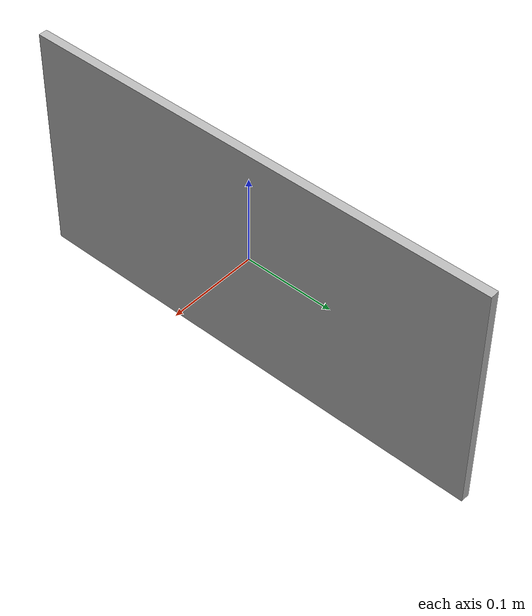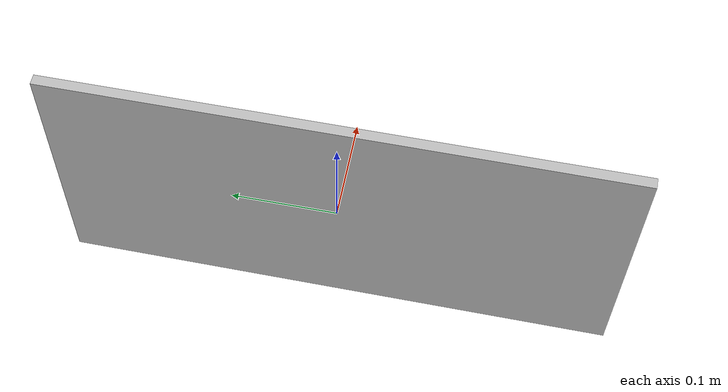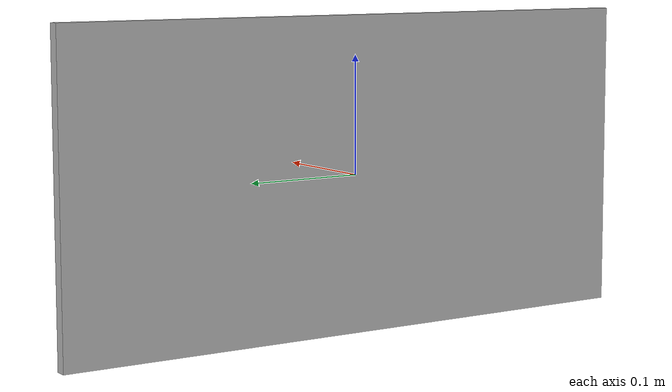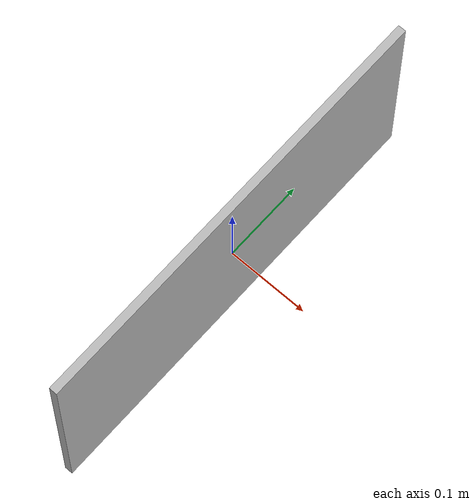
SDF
<?xml version='1.0'?>
<sdf version='1.7'>
  <model name='poster'>
    <static>1</static>
    <link name='link_0'>
      <pose>0 0 0 0 0 0</pose>
      <visual name='visual'>
        <geometry>
          <box>
            <size>0.010000 0.537989 0.266526</size>
          </box>
        </geometry>
        <material>
          <script>
            <uri>model://poster/materials/scripts</uri>
            <uri>model://poster/materials/textures</uri>
            <name>FireExit/Label</name>
          </script>
        </material>
      </visual>
      <collision name='collision'>
        <geometry>
          <box>
            <size>0.01 0.537989 0.266526</size>
          </box>
        </geometry>
      </collision>
    </link>
  </model>
</sdf>
